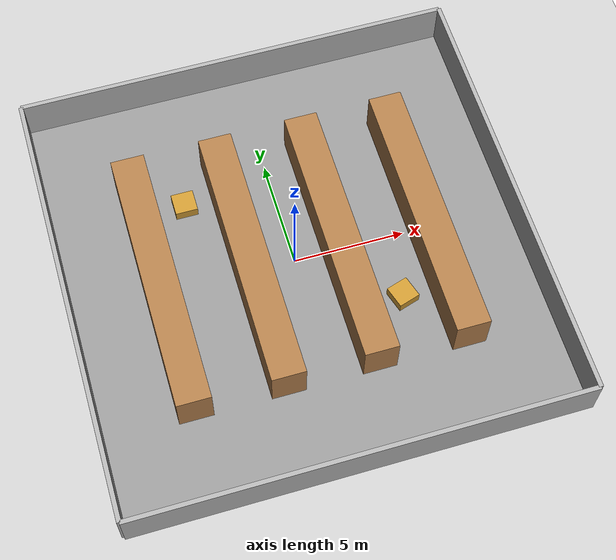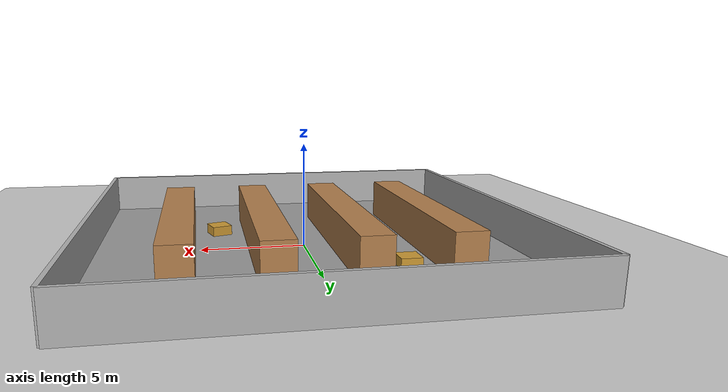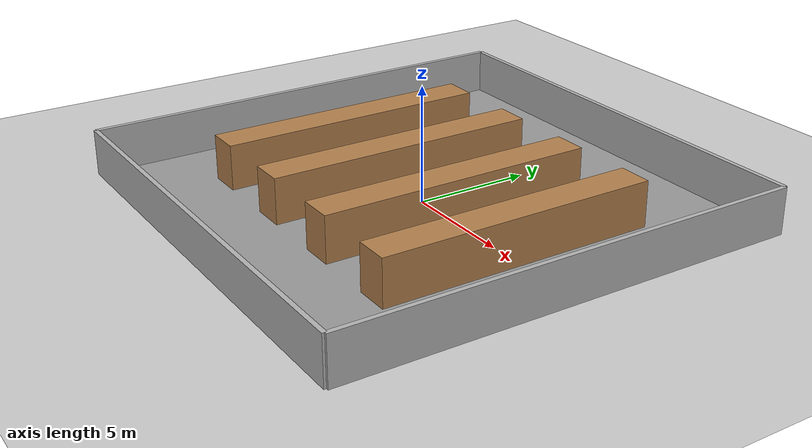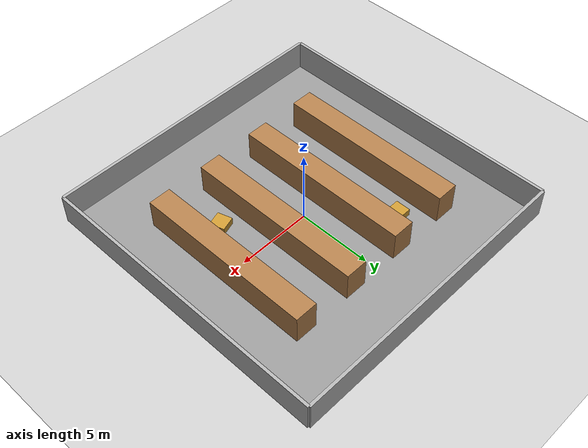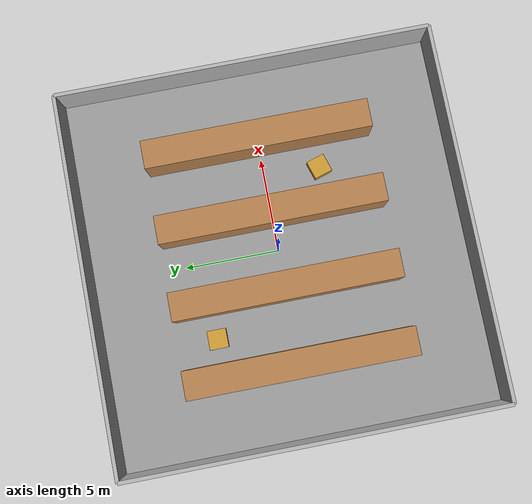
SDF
<sdf version="1.6">
 <world name="warehouse">
  <physics type="ode">
   <max_step_size>0.001</max_step_size>
   <real_time_factor>1</real_time_factor>
   <real_time_update_rate>1000</real_time_update_rate>
  </physics>
  <include><uri>model://sun</uri></include>
  <include><uri>model://ground_plane</uri></include>
  <model name="warehouse_floor">
   <static>true</static>
   <pose>0 0 0.01 0 0 0</pose>
   <link name="floor_link">
    <collision name="floor_collision"><geometry><box><size>20 20 0.02</size></box></geometry></collision>
    <visual name="floor_visual">
     <geometry><box><size>20 20 0.02</size></box></geometry>
     <material><ambient>0.5 0.5 0.5 1</ambient><diffuse>0.6 0.6 0.6 1</diffuse></material>
    </visual>
   </link>
  </model>
  <model name="wall_north">
   <static>true</static>
   <pose>0 10 1 0 0 0</pose>
   <link name="link">
    <collision name="collision"><geometry><box><size>20 0.2 2</size></box></geometry></collision>
    <visual name="visual">
     <geometry><box><size>20 0.2 2</size></box></geometry>
     <material><ambient>0.7 0.7 0.7 1</ambient></material>
    </visual>
   </link>
  </model>
  <model name="wall_south">
   <static>true</static>
   <pose>0 -10 1 0 0 0</pose>
   <link name="link">
    <collision name="collision"><geometry><box><size>20 0.2 2</size></box></geometry></collision>
    <visual name="visual">
     <geometry><box><size>20 0.2 2</size></box></geometry>
     <material><ambient>0.7 0.7 0.7 1</ambient></material>
    </visual>
   </link>
  </model>
  <model name="wall_east">
   <static>true</static>
   <pose>10 0 1 0 0 1.5708</pose>
   <link name="link">
    <collision name="collision"><geometry><box><size>20 0.2 2</size></box></geometry></collision>
    <visual name="visual">
     <geometry><box><size>20 0.2 2</size></box></geometry>
     <material><ambient>0.7 0.7 0.7 1</ambient></material>
    </visual>
   </link>
  </model>
  <model name="wall_west">
   <static>true</static>
   <pose>-10 0 1 0 0 1.5708</pose>
   <link name="link">
    <collision name="collision"><geometry><box><size>20 0.2 2</size></box></geometry></collision>
    <visual name="visual">
     <geometry><box><size>20 0.2 2</size></box></geometry>
     <material><ambient>0.7 0.7 0.7 1</ambient></material>
    </visual>
   </link>
  </model>
  <model name="shelf_row_1">
   <static>true</static>
   <pose>-6 0 1 0 0 0</pose>
   <link name="link">
    <collision name="collision"><geometry><box><size>1.5 12 2</size></box></geometry></collision>
    <visual name="visual">
     <geometry><box><size>1.5 12 2</size></box></geometry>
     <material><ambient>0.6 0.4 0.2 1</ambient><diffuse>0.7 0.5 0.3 1</diffuse></material>
    </visual>
   </link>
  </model>
  <model name="shelf_row_2">
   <static>true</static>
   <pose>-2 0 1 0 0 0</pose>
   <link name="link">
    <collision name="collision"><geometry><box><size>1.5 12 2</size></box></geometry></collision>
    <visual name="visual">
     <geometry><box><size>1.5 12 2</size></box></geometry>
     <material><ambient>0.6 0.4 0.2 1</ambient><diffuse>0.7 0.5 0.3 1</diffuse></material>
    </visual>
   </link>
  </model>
  <model name="shelf_row_3">
   <static>true</static>
   <pose>2 0 1 0 0 0</pose>
   <link name="link">
    <collision name="collision"><geometry><box><size>1.5 12 2</size></box></geometry></collision>
    <visual name="visual">
     <geometry><box><size>1.5 12 2</size></box></geometry>
     <material><ambient>0.6 0.4 0.2 1</ambient><diffuse>0.7 0.5 0.3 1</diffuse></material>
    </visual>
   </link>
  </model>
  <model name="shelf_row_4">
   <static>true</static>
   <pose>6 0 1 0 0 0</pose>
   <link name="link">
    <collision name="collision"><geometry><box><size>1.5 12 2</size></box></geometry></collision>
    <visual name="visual">
     <geometry><box><size>1.5 12 2</size></box></geometry>
     <material><ambient>0.6 0.4 0.2 1</ambient><diffuse>0.7 0.5 0.3 1</diffuse></material>
    </visual>
   </link>
  </model>
  <model name="pallet_1">
   <static>true</static>
   <pose>-4 4 0.25 0 0 0</pose>
   <link name="link">
    <collision name="collision"><geometry><box><size>1 1 0.5</size></box></geometry></collision>
    <visual name="visual">
     <geometry><box><size>1 1 0.5</size></box></geometry>
     <material><ambient>0.8 0.6 0.2 1</ambient></material>
    </visual>
   </link>
  </model>
  <model name="pallet_2">
   <static>true</static>
   <pose>4 -3 0.25 0 0 0.3</pose>
   <link name="link">
    <collision name="collision"><geometry><box><size>1 1 0.5</size></box></geometry></collision>
    <visual name="visual">
     <geometry><box><size>1 1 0.5</size></box></geometry>
     <material><ambient>0.8 0.6 0.2 1</ambient></material>
    </visual>
   </link>
  </model>
 </world>
</sdf>
